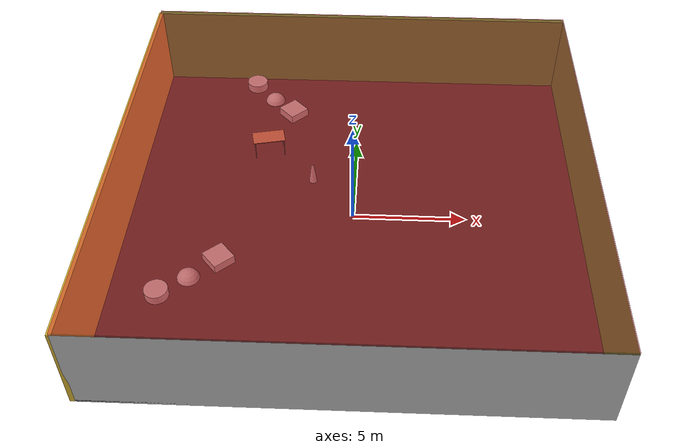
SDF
<sdf version="1.4">
 <world name="default">
  <physics type="ode">
   <max_step_size>0.001</max_step_size>
   <real_time_factor>1</real_time_factor>
   <real_time_update_rate>1000</real_time_update_rate>
   <gravity>0 0 -9.8</gravity>
  </physics>
  <scene><ambient>0.4 0.4 0.4 1</ambient><background>0.7 0.7 0.7 1</background><shadows>1</shadows></scene>
  <model name="Surrounding">
   <static>1</static>
   <link name="Ceiling">
    <collision name="Ceiling_Collision"><geometry><box><size>20 20 0.1</size></box></geometry></collision>
    <visual name="Ceiling_Visual">
     <geometry><box><size>20 20 0.1</size></box></geometry>
     <material>
      <script><uri>file://media/materials/scripts/gazebo.material</uri><name>Gazebo/RedTransparent</name></script>
     </material>
    </visual>
    <pose>0 0 4.05 0 0 0</pose>
   </link>
   <link name="Wall_South">
    <collision name="Wall_South_Collision">
     <geometry><box><size>20 0 4</size></box></geometry>
     <pose>0 0 2 0 -0 0</pose>
    </collision>
    <visual name="Wall_South_Visual">
     <pose>0 0 2 0 -0 0</pose>
     <geometry><box><size>20 0 4</size></box></geometry>
     <material>
      <script><uri>file://media/materials/scripts/gazebo.material</uri><name>Gazebo/CloudySky</name></script>
     </material>
    </visual>
    <velocity_decay><linear>0</linear><angular>0</angular></velocity_decay>
    <pose>0 -10 0 0 -0 0</pose>
   </link>
   <link name="Wall_East">
    <collision name="Wall_21_Collision">
     <geometry><box><size>20 0 4</size></box></geometry>
     <pose>0 0 2 0 -0 0</pose>
    </collision>
    <visual name="Wall_21_Visual">
     <pose>0 0 2 0 -0 0</pose>
     <geometry><box><size>20 0 4</size></box></geometry>
     <material>
      <script><uri>file://media/materials/scripts/gazebo.material</uri><name>Gazebo/GreenGlow</name></script>
     </material>
    </visual>
    <velocity_decay><linear>0</linear><angular>0</angular></velocity_decay>
    <pose>10 0 0 0 -0 1.5708</pose>
   </link>
   <link name="Wall_North">
    <collision name="Wall_22_Collision">
     <geometry><box><size>20 0.2 4</size></box></geometry>
     <pose>0 0 2 0 -0 0</pose>
    </collision>
    <visual name="Wall_22_Visual">
     <pose>0 0 2 0 -0 0</pose>
     <geometry><box><size>20 0.2 4</size></box></geometry>
     <material>
      <script><uri>file://media/materials/scripts/gazebo.material</uri><name>Gazebo/Green</name></script>
     </material>
    </visual>
    <velocity_decay><linear>0</linear><angular>0</angular></velocity_decay>
    <pose>0 10 0 0 -0 0</pose>
   </link>
   <link name="Wall_West">
    <collision name="Wall_23_Collision">
     <geometry><box><size>20 0.2 4</size></box></geometry>
     <pose>0 0 2 0 -0 0</pose>
    </collision>
    <visual name="Wall_23_Visual">
     <pose>0 0 2 0 -0 0</pose>
     <geometry><box><size>20 0.2 4</size></box></geometry>
     <material>
      <script><uri>file://media/materials/scripts/gazebo.material</uri><name>Gazebo/Gold</name></script>
     </material>
    </visual>
    <velocity_decay><linear>0</linear><angular>0</angular></velocity_decay>
    <pose>-10 0 0 0 0 -1.5708</pose>
   </link>
   <link name="Ground_link">
    <collision name="collision">
     <pose>0 0 .05 0 -0 0</pose>
     <geometry><box><size>20 20 0.1</size></box></geometry>
    </collision>
    <visual name="visual">
     <pose>0 0 .05 0 -0 0</pose>
     <geometry><box><size>20 20 0.1</size></box></geometry>
     <material>
      <script><uri>file://media/materials/scripts/gazebo.material</uri><name>Gazebo/Black</name></script>
     </material>
    </visual>
   </link>
   <static>1</static>
  </model>
  <spherical_coordinates>
   <surface_model>EARTH_WGS84</surface_model>
   <latitude_deg>0</latitude_deg>
   <longitude_deg>0</longitude_deg>
   <elevation>0</elevation>
   <heading_deg>0</heading_deg>
  </spherical_coordinates>
  <light name="lightball_0" type="diffuse">
   <diffuse>0.8 0.8 0.8 1</diffuse>
   <specular>0.2 0.2 0.2 1</specular>
   <attenuation>
    <range>100</range>
    <constant>0.7</constant>
    <linear>0.01</linear>
    <quadratic>0.001</quadratic>
   </attenuation>
   <direction>-0.5 0.1 -0.9</direction>
   <pose>5.30643733858 -9.64909630216 3.78859364639 0 0 0</pose>
  </light>
  <light name="lightball_1" type="diffuse">
   <diffuse>0.8 0.8 0.8 1</diffuse>
   <specular>0.2 0.2 0.2 1</specular>
   <attenuation>
    <range>100</range>
    <constant>0.7</constant>
    <linear>0.01</linear>
    <quadratic>0.001</quadratic>
   </attenuation>
   <direction>-0.5 0.1 -0.9</direction>
   <pose>-3.77864907686 -9.75298218443 1.2696755381 0 0 0</pose>
  </light>
  <light name="lightball_2" type="diffuse">
   <diffuse>0.8 0.8 0.8 1</diffuse>
   <specular>0.2 0.2 0.2 1</specular>
   <attenuation>
    <range>100</range>
    <constant>0.7</constant>
    <linear>0.01</linear>
    <quadratic>0.001</quadratic>
   </attenuation>
   <direction>-0.5 0.1 -0.9</direction>
   <pose>4.98916935311 3.66585209423 0.655979196436 0 0 0</pose>
  </light>
  <light name="lightball_3" type="diffuse">
   <diffuse>0.8 0.8 0.8 1</diffuse>
   <specular>0.2 0.2 0.2 1</specular>
   <attenuation>
    <range>100</range>
    <constant>0.7</constant>
    <linear>0.01</linear>
    <quadratic>0.001</quadratic>
   </attenuation>
   <direction>-0.5 0.1 -0.9</direction>
   <pose>1.51419047548 -1.85805231953 3.03602434879 0 0 0</pose>
  </light>
  <light name="lightball_4" type="diffuse">
   <diffuse>0.8 0.8 0.8 1</diffuse>
   <specular>0.2 0.2 0.2 1</specular>
   <attenuation>
    <range>100</range>
    <constant>0.7</constant>
    <linear>0.01</linear>
    <quadratic>0.001</quadratic>
   </attenuation>
   <direction>-0.5 0.1 -0.9</direction>
   <pose>-7.75009621242 -8.2550072115 3.11578040366 0 0 0</pose>
  </light>
  <light name="lightball_5" type="diffuse">
   <diffuse>0.8 0.8 0.8 1</diffuse>
   <specular>0.2 0.2 0.2 1</specular>
   <attenuation>
    <range>100</range>
    <constant>0.7</constant>
    <linear>0.01</linear>
    <quadratic>0.001</quadratic>
   </attenuation>
   <direction>-0.5 0.1 -0.9</direction>
   <pose>6.47654758993 -9.97468979459 1.46691695246 0 0 0</pose>
  </light>
  <light name="lightball_6" type="diffuse">
   <diffuse>0.8 0.8 0.8 1</diffuse>
   <specular>0.2 0.2 0.2 1</specular>
   <attenuation>
    <range>100</range>
    <constant>0.7</constant>
    <linear>0.01</linear>
    <quadratic>0.001</quadratic>
   </attenuation>
   <direction>-0.5 0.1 -0.9</direction>
   <pose>2.94038590128 7.53879884845 3.06028756695 0 0 0</pose>
  </light>
  <light name="lightball_7" type="diffuse">
   <diffuse>0.8 0.8 0.8 1</diffuse>
   <specular>0.2 0.2 0.2 1</specular>
   <attenuation>
    <range>100</range>
    <constant>0.7</constant>
    <linear>0.01</linear>
    <quadratic>0.001</quadratic>
   </attenuation>
   <direction>-0.5 0.1 -0.9</direction>
   <pose>9.69571133441 -9.98300887376 2.27937196055 0 0 0</pose>
  </light>
  <light name="lightball_8" type="diffuse">
   <diffuse>0.8 0.8 0.8 1</diffuse>
   <specular>0.2 0.2 0.2 1</specular>
   <attenuation>
    <range>100</range>
    <constant>0.7</constant>
    <linear>0.01</linear>
    <quadratic>0.001</quadratic>
   </attenuation>
   <direction>-0.5 0.1 -0.9</direction>
   <pose>-9.36178253496 -9.41687654709 1.10078082111 0 0 0</pose>
  </light>
  <light name="lightball_9" type="diffuse">
   <diffuse>0.8 0.8 0.8 1</diffuse>
   <specular>0.2 0.2 0.2 1</specular>
   <attenuation>
    <range>100</range>
    <constant>0.7</constant>
    <linear>0.01</linear>
    <quadratic>0.001</quadratic>
   </attenuation>
   <direction>-0.5 0.1 -0.9</direction>
   <pose>-4.95709562525 3.60924319117 2.65647276557 0 0 0</pose>
  </light>
  <include>
   <uri>model://textured_shapes</uri>
   <pose>-6.71937607837 -3.94427700456 0 0 0 2.28246483318</pose>
  </include>
  <include><uri>model://table</uri><pose>-4.16842661275 4.15655226961 0 0 0 0.208956196705</pose></include>
  <include>
   <uri>model://textured_shapes</uri>
   <pose>-4.27282034513 8.07455929967 0 0 0 0.757018044262</pose>
  </include>
  <include>
   <uri>model://construction_cone</uri>
   <pose>-1.92958494935 2.15892156586 0 0 0 2.10496075629</pose>
  </include>
 </world>
</sdf>

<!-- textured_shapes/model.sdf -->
<sdf version="1.6">
  <model name="textured_shapes">
    <pose>0 0 0.5 0 0 0</pose>
    <link name="box">
      <pose>0 -1.5 0 0 0 0</pose>
      <collision name="collision">
        <geometry>
          <box>
            <size>1 1 1</size>
          </box>
        </geometry>
      </collision>
      <visual name="visual">
        <geometry>
          <box>
            <size>1 1 1</size>
          </box>
        </geometry>
        <material>
          <script>
            <uri>model://../model_source/models/textured_shapes/materials/scripts</uri>
            <uri>model://../model_source/models/textured_shapes/materials/textures</uri>
            <name>TexturedShape/Squares</name>
          </script>
        </material>
      </visual>
    </link>
    <link name="sphere">
      <collision name="collision">
        <geometry>
          <sphere>
            <radius>0.5</radius>
          </sphere>
        </geometry>
      </collision>
      <visual name="visual">
        <geometry>
          <sphere>
            <radius>0.5</radius>
          </sphere>
        </geometry>
        <material>
          <script>
            <uri>model://../model_source/models/textured_shapes/materials/scripts</uri>
            <uri>model://../model_source/models/textured_shapes/materials/textures</uri>
            <name>TexturedShape/Squares</name>
          </script>
        </material>
      </visual>
    </link>
    <link name="cylinder">
      <pose>0 1.5 0 0 0 0</pose>
      <collision name="collision">
        <geometry>
          <cylinder>
            <radius>0.5</radius>
            <length>1</length>
          </cylinder>
        </geometry>
      </collision>
      <visual name="visual">
        <geometry>
          <cylinder>
            <radius>0.5</radius>
            <length>1</length>
          </cylinder>
        </geometry>
        <material>
          <script>
            <uri>model://../model_source/models/textured_shapes/materials/scripts</uri>
            <uri>model://../model_source/models/textured_shapes/materials/textures</uri>
            <name>TexturedShape/Squares</name>
          </script>
        </material>
      </visual>
    </link>
  </model>
</sdf>

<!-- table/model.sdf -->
<sdf version="1.5">
  <model name="table">
    <static>true</static>
    <link name="link">
      <collision name="surface">
        <pose>0 0 1.0 0 0 0</pose>
        <geometry>
          <box>
            <size>1.5 0.8 0.03</size>
          </box>
        </geometry>
        <surface>
          <friction>
            <ode>
              <mu>0.6</mu>
              <mu2>0.6</mu2>
            </ode>
          </friction>
        </surface>
      </collision>
      <visual name="visual1">
        <pose>0 0 1.0 0 0 0</pose>
        <geometry>
          <box>
            <size>1.5 0.8 0.03</size>
          </box>
        </geometry>
        <material>
          <script>
            <uri>model://media/materials/scripts/gazebo.material</uri>
            <name>Gazebo/Wood</name>
          </script>
        </material>
      </visual>
      <collision name="front_left_leg">
        <pose>0.68 0.38 0.5 0 0 0</pose>
        <geometry>
          <cylinder>
            <radius>0.02</radius>
            <length>1.0</length>
          </cylinder>
        </geometry>
      </collision>
      <visual name="front_left_leg">
        <pose>0.68 0.38 0.5 0 0 0</pose>
        <geometry>
          <cylinder>
            <radius>0.02</radius>
            <length>1.0</length>
          </cylinder>
        </geometry>
        <material>
          <script>
            <uri>model://media/materials/scripts/gazebo.material</uri>
            <name>Gazebo/Grey</name>
          </script>
        </material>
      </visual>
      <collision name="front_right_leg">
        <pose>0.68 -0.38 0.5 0 0 0</pose>
        <geometry>
          <cylinder>
            <radius>0.02</radius>
            <length>1.0</length>
          </cylinder>
        </geometry>
      </collision>
      <visual name="front_right_leg">
        <pose>0.68 -0.38 0.5 0 0 0</pose>
        <geometry>
          <cylinder>
            <radius>0.02</radius>
            <length>1.0</length>
          </cylinder>
        </geometry>
        <material>
          <script>
            <uri>model://media/materials/scripts/gazebo.material</uri>
            <name>Gazebo/Grey</name>
          </script>
        </material>
      </visual>
      <collision name="back_right_leg">
        <pose>-0.68 -0.38 0.5 0 0 0</pose>
        <geometry>
          <cylinder>
            <radius>0.02</radius>
            <length>1.0</length>
          </cylinder>
        </geometry>
      </collision>
      <visual name="back_right_leg">
        <pose>-0.68 -0.38 0.5 0 0 0</pose>
        <geometry>
          <cylinder>
            <radius>0.02</radius>
            <length>1.0</length>
          </cylinder>
        </geometry>
        <material>
          <script>
            <uri>model://media/materials/scripts/gazebo.material</uri>
            <name>Gazebo/Grey</name>
          </script>
        </material>
      </visual>
      <collision name="back_left_leg">
        <pose>-0.68 0.38 0.5 0 0 0</pose>
        <geometry>
          <cylinder>
            <radius>0.02</radius>
            <length>1.0</length>
          </cylinder>
        </geometry>
      </collision>
      <visual name="back_left_leg">
        <pose>-0.68 0.38 0.5 0 0 0</pose>
        <geometry>
          <cylinder>
            <radius>0.02</radius>
            <length>1.0</length>
          </cylinder>
        </geometry>
        <material>
          <script>
            <uri>model://media/materials/scripts/gazebo.material</uri>
            <name>Gazebo/Grey</name>
          </script>
        </material>
      </visual>
    </link>
  </model>
</sdf>

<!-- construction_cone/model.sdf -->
<sdf version="1.5">
  <model name="Construction Cone">
    <link name="link">
      <collision name="collision">
        <geometry>
          <mesh>
            <scale>10 10 10</scale>
            <uri>file://isr-testbed/construction_cone/meshes/construction_cone.dae</uri>
          </mesh>
        </geometry>
      </collision>
      <visual name="visual">
        <geometry>
          <mesh>
            <scale>10 10 10</scale>
            <uri>file://isr-testbed/construction_cone/meshes/construction_cone.dae</uri>
          </mesh>
        </geometry>
      </visual>
    </link>
  </model>
</sdf>
